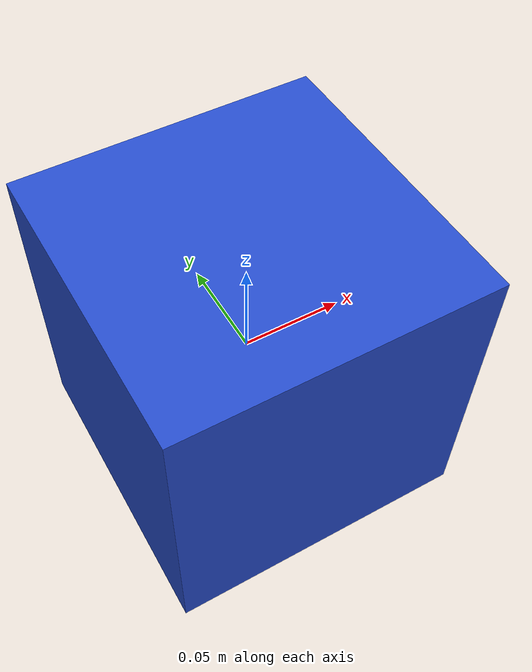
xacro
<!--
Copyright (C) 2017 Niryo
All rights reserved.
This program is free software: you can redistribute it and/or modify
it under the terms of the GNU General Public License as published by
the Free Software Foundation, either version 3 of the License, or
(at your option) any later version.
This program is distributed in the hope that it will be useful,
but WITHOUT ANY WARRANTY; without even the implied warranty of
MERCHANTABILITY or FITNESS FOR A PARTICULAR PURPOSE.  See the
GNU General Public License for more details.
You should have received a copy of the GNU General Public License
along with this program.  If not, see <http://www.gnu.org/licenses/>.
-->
<?xml version="1.0"?>

<robot xmlns:xacro="http://ros.org/wiki/xacro" name="simple_box">
  <link name="box_1">
    <inertial>
      <origin xyz="0 0 0" />
      <mass value="1" />
      <inertia  ixx="100" ixy="0.0"  ixz="0.0"  iyy="0.1"  iyz="0.0"  izz="0.1" />
    </inertial>
    <visual>
      <origin xyz="0 0 0"/>
      <geometry>
        <box size="0.15 0.15 0.15" />
      </geometry>
    </visual>
    <collision>
      <origin xyz="0 0 0"/>
      <geometry>
        <box size="0.15 0.15 0.15" />
      </geometry>
    </collision>
  </link>

  <gazebo reference="box_1">
    <material>Gazebo/Blue</material>

  </gazebo>
</robot>
